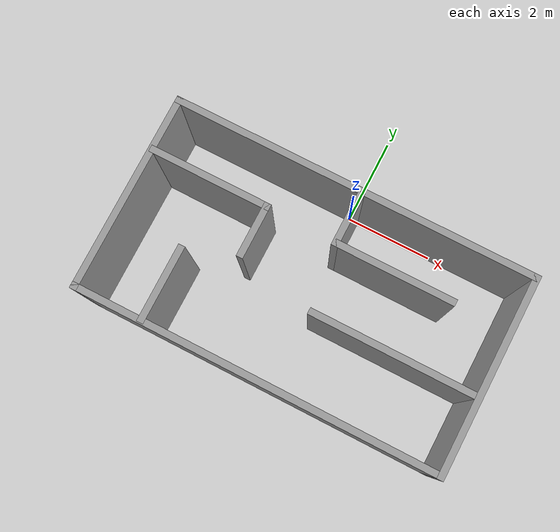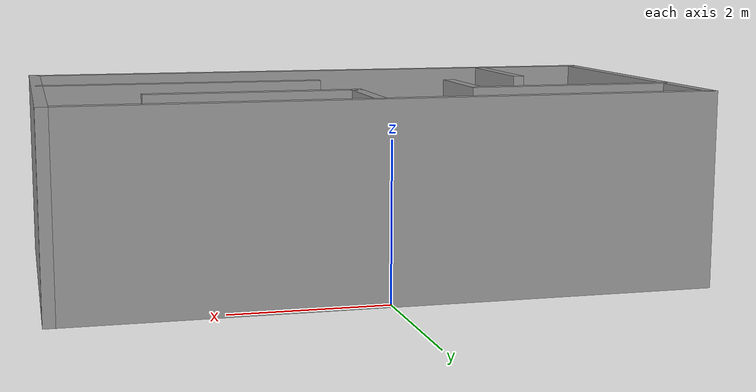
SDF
<?xml version='1.0'?>
<sdf version='1.7'>
  <model name='map'>
    <pose>-0.024575 -2.1366 0 0 -0 0</pose>
    <link name='Wall_11'>
      <collision name='Wall_11_Collision'>
        <geometry>
          <box>
            <size>2.75 0.15 2.5</size>
          </box>
        </geometry>
        <pose>0 0 1.25 0 -0 0</pose>
      </collision>
      <visual name='Wall_11_Visual'>
        <pose>0 0 1.25 0 -0 0</pose>
        <geometry>
          <box>
            <size>2.75 0.15 2.5</size>
          </box>
        </geometry>
        <material>
          <script>
            <uri>file://media/materials/scripts/gazebo.material</uri>
            <name>Gazebo/Grey</name>
          </script>
          <ambient>1 1 1 1</ambient>
        </material>
        <meta>
          <layer>0</layer>
        </meta>
      </visual>
      <pose>-2.71033 1.0112 0 0 -0 0</pose>
    </link>
    <link name='Wall_12'>
      <collision name='Wall_12_Collision'>
        <geometry>
          <box>
            <size>1.25 0.15 2.5</size>
          </box>
        </geometry>
        <pose>0 0 1.25 0 -0 0</pose>
      </collision>
      <visual name='Wall_12_Visual'>
        <pose>0 0 1.25 0 -0 0</pose>
        <geometry>
          <box>
            <size>1.25 0.15 2.5</size>
          </box>
        </geometry>
        <material>
          <script>
            <uri>file://media/materials/scripts/gazebo.material</uri>
            <name>Gazebo/Grey</name>
          </script>
          <ambient>1 1 1 1</ambient>
        </material>
        <meta>
          <layer>0</layer>
        </meta>
      </visual>
      <pose>-1.41033 0.4612 0 0 -0 -1.5708</pose>
    </link>
    <link name='Wall_14'>
      <collision name='Wall_14_Collision'>
        <geometry>
          <box>
            <size>1.25 0.15 2.5</size>
          </box>
        </geometry>
        <pose>0 0 1.25 0 -0 0</pose>
      </collision>
      <visual name='Wall_14_Visual'>
        <pose>0 0 1.25 0 -0 0</pose>
        <geometry>
          <box>
            <size>1.25 0.15 2.5</size>
          </box>
        </geometry>
        <material>
          <script>
            <uri>file://media/materials/scripts/gazebo.material</uri>
            <name>Gazebo/Grey</name>
          </script>
          <ambient>1 1 1 1</ambient>
        </material>
        <meta>
          <layer>0</layer>
        </meta>
      </visual>
      <pose>0.168775 1.53242 0 0 -0 -1.5708</pose>
    </link>
    <link name='Wall_15'>
      <collision name='Wall_15_Collision'>
        <geometry>
          <box>
            <size>2.75 0.15 2.5</size>
          </box>
        </geometry>
        <pose>0 0 1.25 0 -0 0</pose>
      </collision>
      <visual name='Wall_15_Visual'>
        <pose>0 0 1.25 0 -0 0</pose>
        <geometry>
          <box>
            <size>2.75 0.15 2.5</size>
          </box>
        </geometry>
        <material>
          <script>
            <uri>file://media/materials/scripts/gazebo.material</uri>
            <name>Gazebo/Grey</name>
          </script>
          <ambient>1 1 1 1</ambient>
        </material>
        <meta>
          <layer>0</layer>
        </meta>
      </visual>
      <pose>1.46877 0.982425 0 0 -0 0</pose>
    </link>
    <link name='Wall_17'>
      <collision name='Wall_17_Collision'>
        <geometry>
          <box>
            <size>1.75 0.15 2.5</size>
          </box>
        </geometry>
        <pose>0 0 1.25 0 -0 0</pose>
      </collision>
      <visual name='Wall_17_Visual'>
        <pose>0 0 1.25 0 -0 0</pose>
        <geometry>
          <box>
            <size>1.75 0.15 2.5</size>
          </box>
        </geometry>
        <material>
          <script>
            <uri>file://media/materials/scripts/gazebo.material</uri>
            <name>Gazebo/Grey</name>
          </script>
          <ambient>1 1 1 1</ambient>
        </material>
        <meta>
          <layer>0</layer>
        </meta>
      </visual>
      <pose>-2.54235 -1.34957 0 0 -0 1.5708</pose>
    </link>
    <link name='Wall_19'>
      <collision name='Wall_19_Collision'>
        <geometry>
          <box>
            <size>3.75 0.15 2.5</size>
          </box>
        </geometry>
        <pose>0 0 1.25 0 -0 0</pose>
      </collision>
      <visual name='Wall_19_Visual'>
        <pose>0 0 1.25 0 -0 0</pose>
        <geometry>
          <box>
            <size>3.75 0.15 2.5</size>
          </box>
        </geometry>
        <material>
          <script>
            <uri>file://media/materials/scripts/gazebo.material</uri>
            <name>Gazebo/Grey</name>
          </script>
          <ambient>1 1 1 1</ambient>
        </material>
        <meta>
          <layer>0</layer>
        </meta>
      </visual>
      <pose>2.1908 -0.483225 0 0 -0 3.14159</pose>
    </link>
    <link name='Wall_6'>
      <collision name='Wall_6_Collision'>
        <geometry>
          <box>
            <size>4.5 0.15 2.5</size>
          </box>
        </geometry>
        <pose>0 0 1.25 0 -0 0</pose>
      </collision>
      <visual name='Wall_6_Visual'>
        <pose>0 0 1.25 0 -0 0</pose>
        <geometry>
          <box>
            <size>4.5 0.15 2.5</size>
          </box>
        </geometry>
        <material>
          <script>
            <uri>file://media/materials/scripts/gazebo.material</uri>
            <name>Gazebo/Grey</name>
          </script>
          <ambient>1 1 1 1</ambient>
        </material>
        <meta>
          <layer>0</layer>
        </meta>
      </visual>
      <pose>-4.05 0 0 0 -0 -1.5708</pose>
    </link>
    <link name='Wall_7'>
      <collision name='Wall_7_Collision'>
        <geometry>
          <box>
            <size>8.25 0.15 2.5</size>
          </box>
        </geometry>
        <pose>0 0 1.25 0 -0 0</pose>
      </collision>
      <visual name='Wall_7_Visual'>
        <pose>0 0 1.25 0 -0 0</pose>
        <geometry>
          <box>
            <size>8.25 0.15 2.5</size>
          </box>
        </geometry>
        <material>
          <script>
            <uri>file://media/materials/scripts/gazebo.material</uri>
            <name>Gazebo/Grey</name>
          </script>
          <ambient>1 1 1 1</ambient>
        </material>
        <meta>
          <layer>0</layer>
        </meta>
      </visual>
      <pose>-0 -2.175 0 0 -0 0</pose>
    </link>
    <link name='Wall_8'>
      <collision name='Wall_8_Collision'>
        <geometry>
          <box>
            <size>4.5 0.15 2.5</size>
          </box>
        </geometry>
        <pose>0 0 1.25 0 -0 0</pose>
      </collision>
      <visual name='Wall_8_Visual'>
        <pose>0 0 1.25 0 -0 0</pose>
        <geometry>
          <box>
            <size>4.5 0.15 2.5</size>
          </box>
        </geometry>
        <material>
          <script>
            <uri>file://media/materials/scripts/gazebo.material</uri>
            <name>Gazebo/Grey</name>
          </script>
          <ambient>1 1 1 1</ambient>
        </material>
        <meta>
          <layer>0</layer>
        </meta>
      </visual>
      <pose>4.05 0 0 0 -0 1.5708</pose>
    </link>
    <link name='Wall_9'>
      <collision name='Wall_9_Collision'>
        <geometry>
          <box>
            <size>8.25 0.15 2.5</size>
          </box>
        </geometry>
        <pose>0 0 1.25 0 -0 0</pose>
      </collision>
      <visual name='Wall_9_Visual'>
        <pose>0 0 1.25 0 -0 0</pose>
        <geometry>
          <box>
            <size>8.25 0.15 2.5</size>
          </box>
        </geometry>
        <material>
          <script>
            <uri>file://media/materials/scripts/gazebo.material</uri>
            <name>Gazebo/Grey</name>
          </script>
          <ambient>1 1 1 1</ambient>
        </material>
        <meta>
          <layer>0</layer>
        </meta>
      </visual>
      <pose>-0 2.175 0 0 -0 3.14159</pose>
    </link>
    <static>1</static>
  </model>
</sdf>
